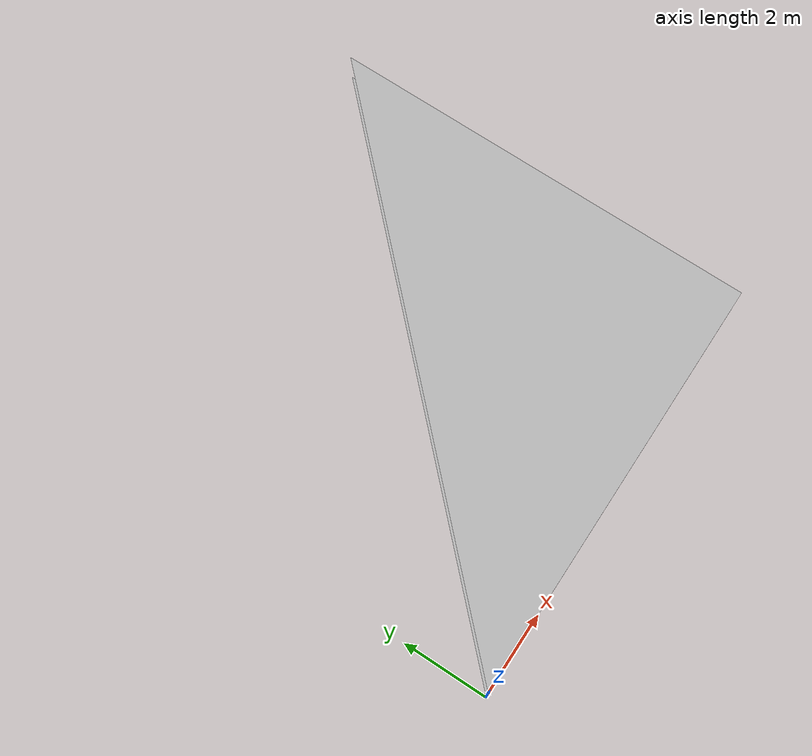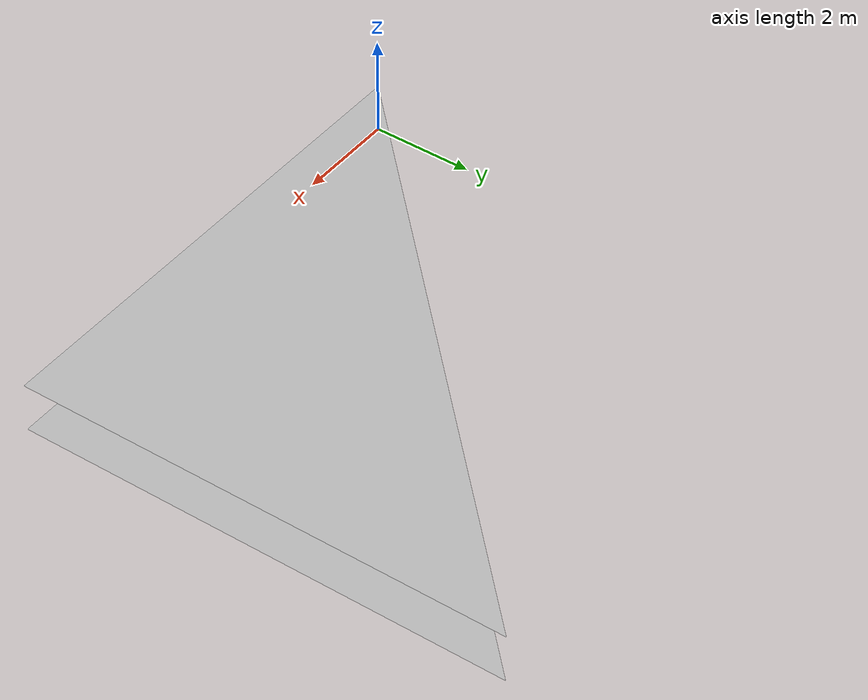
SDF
<?xml version="1.0" ?>
<sdf version="1.6">
  <world name="default">
    <scene>
      <background>0 0 0 1</background>
      <ambient>1 1 1 1</ambient>
      <grid>false</grid>
      <origin_visual>false</origin_visual>
    </scene>

    <gui>
      <camera name="user">
        <pose>3 2 1 0 1.5707 0</pose>
      </camera>
    </gui>

    <model name="model">
      <static>true</static>
      <link name="link">
        <visual name="visual-polylist">
          <geometry>
            <mesh>
              <uri>file://media/models/multiple_texture_coordinates.dae</uri>
            </mesh>
          </geometry>
        </visual>
        <visual name="visual-triangle">
          <pose>0 0 1 0 0 0</pose>
          <geometry>
            <mesh>
              <uri>file://media/models/multiple_texture_coordinates_triangle.dae</uri>
            </mesh>
          </geometry>
        </visual>
      </link>
    </model>

  </world>
</sdf>
